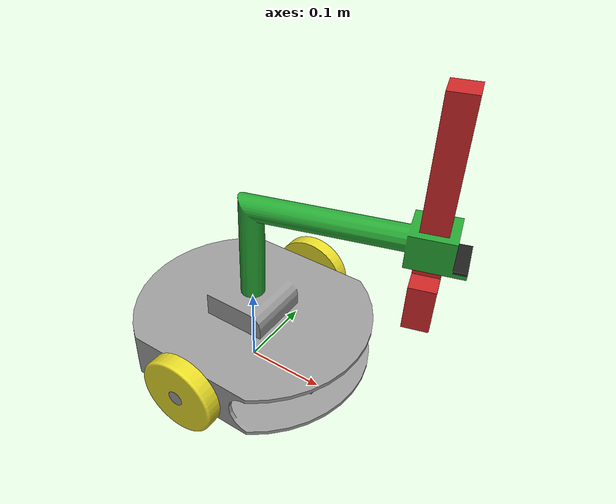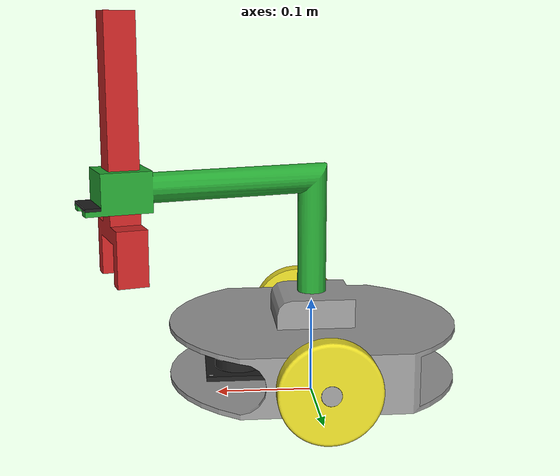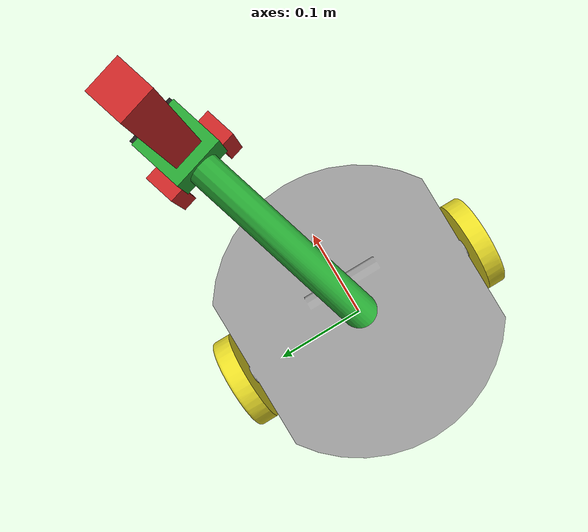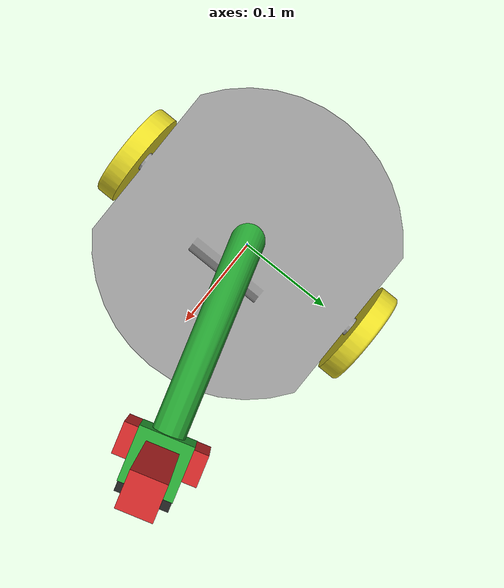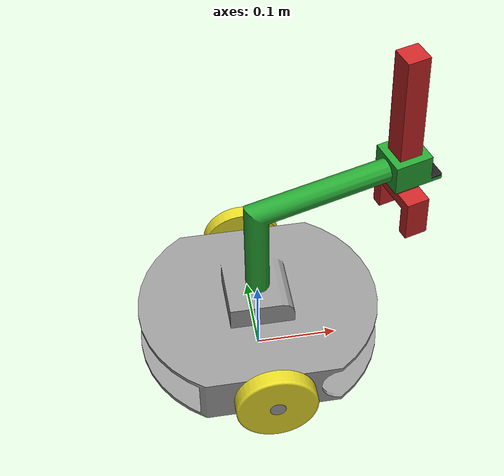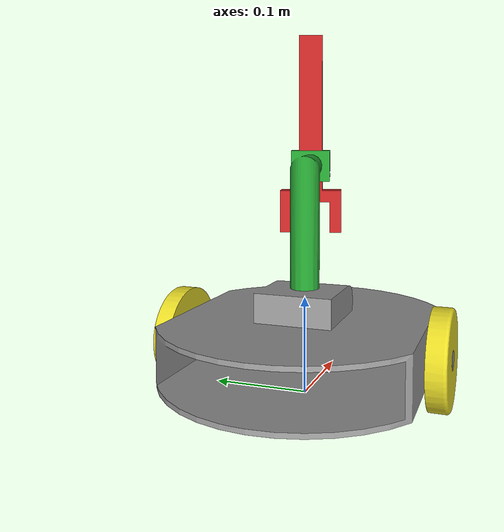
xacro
<?xml version="1.0" encoding="utf-8"?>

<robot name="Final" xmlns:xacro="http://www.ros.org/wiki/xacro">

  <xacro:include filename="gazebo_plugin.xacro" />
  <xacro:include filename="common_properties.xacro" />
  <xacro:include filename="sensor.xacro" />

  <link name="base_footprint"></link>

  <link name="base_link">
    <inertial>
      <origin
        xyz="-0.0010608 -5.5511E-17 -0.022278"
        rpy="0 0 0" />
      <mass
        value="2.4911" />
      <inertia
        ixx="0.014316"
        ixy="-1.0937E-17"
        ixz="3.1342E-06"
        iyy="0.01363"
        iyz="-2.0199E-18"
        izz="0.023535" />
    </inertial>
    <visual>
      <origin xyz="0 0 0" rpy="0 0 0" />
      <geometry>
        <mesh filename="package://my_robot_description/meshes/base_link.STL" />
      </geometry>
      <material name="gray">
      </material>
    </visual>
    <collision>
      <origin xyz="0 0 0" rpy="0 0 0" />
      <geometry>
        <mesh filename="package://my_robot_description/meshes/base_link.STL" />
      </geometry>
    </collision>
  </link>

  <joint name="base_footprint_joint" type="fixed">
      <parent link="base_footprint"/>
      <child link="base_link"/>
      <origin xyz="0 0 0.08" rpy="0 0 0"/>
  </joint>

  <link name="RW">
    <inertial>
      <origin xyz="0 0.010037 0" rpy="0 0 0" />
      <mass value="1.2016" />
      <inertia
        ixx="0.0008181"
        ixy="5.7423E-21"
        ixz="-1.0934E-19"
        iyy="0.0015566"
        iyz="3.3653E-21"
        izz="0.0008181" />
    </inertial>
    <visual>
      <origin xyz="0 0 0" rpy="0 0 0" />
      <geometry>
        <mesh filename="package://my_robot_description/meshes/RW.STL" />
      </geometry>
      <material name="yellow">
      </material>
    </visual>
    <collision>
      <origin xyz="0 0 0" rpy="0 0 0" />
      <geometry>
        <mesh filename="package://my_robot_description/meshes/RW.STL" />
      </geometry>
      <limit effort="5.0" velocity="10.0"/>
    </collision>
  </link>

  <joint name="RW_joint" type="continuous">
    <origin xyz="0 -0.15 -0.03" rpy="0 0 0" />
    <parent link="base_link" />
    <child link="RW" />
    <axis xyz="0 1 0" />
    <dynamics damping="0.001" friction="0.001"/>
  </joint>

  <link name="LW">
    <inertial>
      <origin xyz="0 -0.010037 0" rpy="0 0 0" />
      <mass value="1.2016" />
        <inertia
          ixx="0.0008181"
          ixy="5.7423E-21"
          ixz="-1.0934E-19"
          iyy="0.0015566"
          iyz="3.3653E-21"
          izz="0.0008181" />
    </inertial>
    <visual>
      <origin xyz="0 0 0" rpy="0 0 0" />
      <geometry>
        <mesh filename="package://my_robot_description/meshes/LW.STL" />
      </geometry>
      <material name="yellow">
      </material>
    </visual>
    <collision>
      <origin xyz="0 0 0" rpy="0 0 0" />
      <geometry>
        <mesh filename="package://my_robot_description/meshes/LW.STL" />
      </geometry>
      <limit effort="5.0" velocity="10.0"/>
    </collision>
  </link>

  <joint name="LW_joint" type="continuous">
    <origin xyz="0 0.15 -0.03" rpy="0 0 0" />
    <parent link="base_link" />
    <child link="LW" />
    <axis xyz="0 1 0" />
    <dynamics damping="0.001" friction="0.001"/>
  </joint>

  <link name="link1">
    <inertial>
      <origin xyz="-0.023258529281105 0.0779674733265255 0.123199644239526" rpy="0 0 0" />
      <mass value="0.196024982311512" />
      <inertia
        ixx="0.00244615908957711"
        ixy="0.000541565877384215"
        ixz="0.000181950912116701"
        iyy="0.00079223393917697"
        iyz="-0.000609954459389115"
        izz="0.00204059303581503" />
    </inertial>
    <visual>
      <origin xyz="0 0 0" rpy="0 0 0" />
      <geometry>
        <mesh filename="package://my_robot_description/meshes/link1.STL" />
      </geometry>
      <material name="green">
      </material>
    </visual>
    <collision>
      <origin xyz="0 0 0" rpy="0 0 0" />
      <geometry>
        <mesh filename="package://my_robot_description/meshes/link1.STL" />
      </geometry>
    </collision>
  </link>

  <joint name="link1_joint" type="revolute">
    <origin xyz="0 0 0" rpy="0 0 ${-pi/2}" />
    <parent link="base_link" />
    <child link="link1" />
    <axis xyz="0 0 -1" />
    <limit
      lower="0"
      upper="${pi}"
      effort="100"
      velocity="0.5" />
    <dynamics damping="1.0" friction="0.5"/>
  </joint>

  <link name="link2">
    <inertial>
      <origin xyz="7.7715611723761E-16 -6.93889390390723E-17 0.0671292646650054" rpy="0 0 0" />
      <mass value="0.052" />
      <inertia
        ixx="0.00144656785714286"
        ixy="5.42101086242752E-20"
        ixz="1.11379286992139E-20"
        iyy="0.00139406785714286"
        iyz="-1.04404452806041E-20"
        izz="9.03000000000001E-05" />
    </inertial>
    <visual>
      <origin xyz="0 0 0" rpy="0 0 0" />
      <geometry>
        <mesh filename="package://my_robot_description/meshes/link2.STL" />
      </geometry>
      <material name="red">
      </material>
    </visual>
    <collision>
      <origin xyz="0 0 0" rpy="0 0 0" />
      <geometry>
        <mesh filename="package://my_robot_description/meshes/link2.STL" />
      </geometry>
    </collision>
  </link>

  <joint name="link2_joint" type="prismatic">
    <origin xyz="-0.057172 0.19165 0.25" rpy="3.1416 0 1.8607" />
    <parent link="link1" />
    <child link="link2" />
    <axis xyz="0 0 1" />
    <limit
      lower="0"
      upper="0.15"
      effort="100"
      velocity="0.5" />
    <dynamics damping="10.0" friction="5.0"/>
  </joint>

  <link name="casterF">
    <inertial>
      <origin xyz="0 2.77555756156289E-17 -1.38777878078145E-17" rpy="0 0 0" />
      <mass value="0.00418879020478639" />
      <inertia
        ixx="1.67551608191456E-07"
        ixy="0"
        ixz="0"
        iyy="1.67551608191456E-07"
        iyz="0"
        izz="1.67551608191456E-07" />
    </inertial>
    <visual>
      <origin xyz="0 0 0" rpy="0 0 0" />
      <geometry>
        <mesh filename="package://my_robot_description/meshes/casterF.STL" />
      </geometry>
      <material name="white">
      </material>
    </visual>
    <collision>
      <origin xyz="0 0 0" rpy="0 0 0" />
      <geometry>
        <mesh filename="package://my_robot_description/meshes/casterF.STL" />
      </geometry>
    </collision>
  </link>

  <joint name="casterF_joint" type="fixed">
    <origin xyz="0.082916 0 -0.07" rpy="0 0 0" />
    <parent link="base_link" />
    <child link="casterF" />
    <axis xyz="0 0 0" />
  </joint>

  <link name="casterB">
    <inertial>
      <origin xyz="0 2.77555756156289E-17 -1.38777878078145E-17" rpy="0 0 0" />
      <mass value="0.00418879020478639" />
      <inertia
        ixx="1.67551608191456E-07"
        ixy="0"
        ixz="0"
        iyy="1.67551608191456E-07"
        iyz="0"
        izz="1.67551608191456E-07" />
    </inertial>
    <visual>
      <origin xyz="0 0 0" rpy="0 0 0" />
      <geometry>
        <mesh filename="package://my_robot_description/meshes/casterB.STL" />
      </geometry>
      <material name="white">
      </material>
    </visual>
    <collision>
      <origin xyz="0 0 0" rpy="0 0 0" />
      <geometry>
        <mesh filename="package://my_robot_description/meshes/casterB.STL" />
      </geometry>
    </collision>
  </link>

  <joint name="casterB_joint" type="fixed">
    <origin xyz="-0.082916 0 -0.07" rpy="0 0 0" />
    <parent link="base_link" />
    <child link="casterB" />
    <axis xyz="0 0 0" />
  </joint>

</robot>

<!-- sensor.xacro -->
<robot xmlns:xacro="http://www.ros.org/wiki/xacro">

    <link name="imu">
        <inertial>
            <origin xyz="0 -2.77555756156289E-17 -0.001" rpy="0 0 0" />
            <mass value="0.000300000000000001" />
            <inertia
            ixx="2.60000000000001E-09"
            ixy="-2.38127833643275E-25"
            ixz="-9.59216981292172E-24"
            iyy="5.72500000000003E-09"
            iyz="2.91433543964105E-24"
            izz="8.12500000000004E-09" />
        </inertial>
        <visual>
            <origin xyz="0 0 0" rpy="0 0 0" />
            <geometry>
            <mesh filename="package://my_robot_description/meshes/imu.STL" />
            </geometry>
            <material name="blue">
            </material>
        </visual>
        <collision>
            <origin xyz="0 0 0" rpy="0 0 0" />
            <geometry>
            <mesh filename="package://my_robot_description/meshes/imu.STL" />
            </geometry>
        </collision>
    </link>

    <joint name="imu_joint" type="fixed">
        <origin xyz="0 0 -0.048" rpy="0 0 0" />
        <parent link="base_link" />
        <child link="imu" />
        <axis xyz="0 0 0" />
    </joint>

    <link name="lidar">
        <inertial>
            <origin xyz="-6.93889390390723E-18 5.55111512312578E-17 -0.017440379321104" rpy="0 0 0" />
            <mass value="0.031946861306415" />
            <inertia
            ixx="2.35645405727583E-05"
            ixy="-7.10858338912758E-22"
            ixz="1.30243311537391E-21"
            iyy="2.35645405727583E-05"
            iyz="2.11992235615218E-24"
            izz="3.46400556805015E-05" />
        </inertial>
        <visual>
            <origin xyz="0 0 0" rpy="0 0 0" />
            <geometry>
            <mesh filename="package://my_robot_description/meshes/lidar.STL" />
            </geometry>
            <material name="black">
            </material>
        </visual>
        <collision>
            <origin xyz="0 0 0" rpy="0 0 0" />
            <geometry>
            <mesh filename="package://my_robot_description/meshes/lidar.STL" />
            </geometry>
        </collision>
    </link>

    <joint name="lidar_joint" type="fixed">
        <origin xyz="0.0775 0 -0.025" rpy="0 0 0" />
        <parent link="base_link" />
        <child link="lidar" />
        <axis xyz="0 0 0" />
    </joint>

    <link name="camera">
        <inertial>
            <origin xyz="-5.55111512312578E-17 -2.77555756156289E-17 -0.00590560908441184" rpy="0 0 0" />
            <mass value="0.00264269908169872" />
            <inertia
            ixx="4.79059510587783E-07"
            ixy="-2.87858853168454E-22"
            ixz="2.55233772967723E-23"
            iyy="5.24970105877827E-08"
            iyz="-2.98589236595148E-23"
            izz="5.15846238521234E-07" />
        </inertial>
        <visual>
            <origin xyz="0 0 0" rpy="0 0 0" />
            <geometry>
                <mesh filename="package://my_robot_description/meshes/camera.STL" />
            </geometry>
            <material name="black">
            </material>
        </visual>
        <collision>
            <origin xyz="0 0 0" rpy="0 0 0" />
            <geometry>
            <mesh filename="package://my_robot_description/meshes/camera.STL" />
            </geometry>
        </collision>
    </link>

    <joint name="camera_joint" type="fixed">
        <origin xyz="-0.066462 0.2228 0.13" rpy="3.1416 0 1.8607" />
        <parent link="link1" />
        <child link="camera" />
        <axis xyz="0 0 0" />
    </joint>

</robot>
